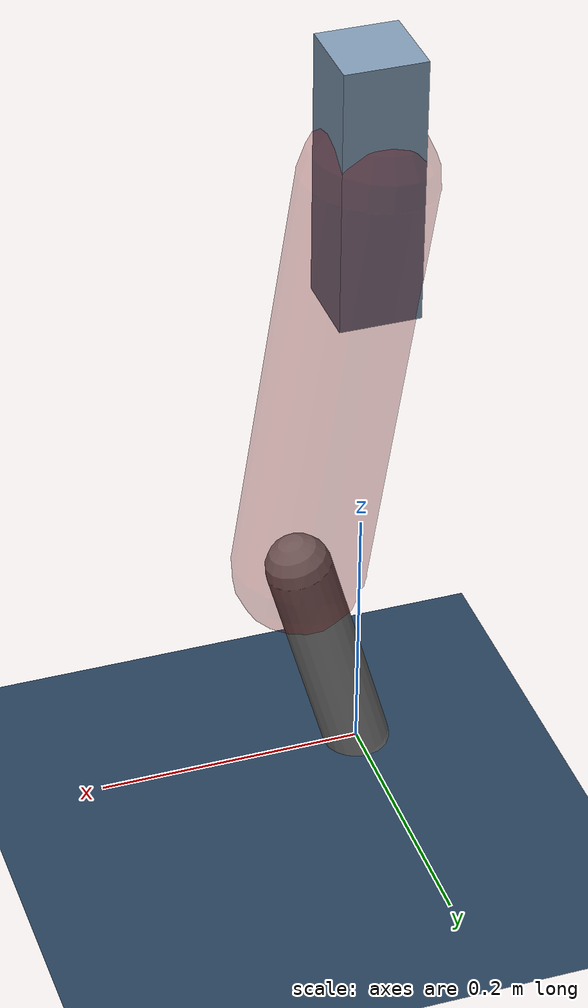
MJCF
<mujoco model="Hopper2D">
	<compiler inertiafromgeom="true" angle="radian" />
	<option timestep="0.001" integrator="implicit" cone="elliptic" solver="Newton" tolerance="1e-10" />

	<default>
		<geom contype="1" conaffinity="1" condim="3" friction="2 0.005 0.0001" solref="0.005 1" />
		<joint limited="true" damping="0.1" />
	</default>

	<asset>
		<texture name="skybox" type="skybox" builtin="gradient" rgb1=".4 .6 .8" rgb2="0 0 0" width="800" height="800" />
		<texture name="grid" type="2d" builtin="checker" rgb1=".1 .2 .3" rgb2=".2 .3 .4" width="300" height="300" mark="edge" markrgb=".2 .3 .4" />
		<material name="ground" texture="grid" texrepeat="1 1" texuniform="true" reflectance="0.1" />
		<material name="leg" rgba="0.5 0.6 0.7 1" />
	</asset>

	<worldbody>

		<geom name="floor" type="plane" size="5 5 0.25" material="ground" />

		<light directional="false" diffuse="0.8 0.8 0.8" specular="0.3 0.3 0.3" pos="0 0 2" dir="0 0 -1" />
		<light mode="targetbodycom" target="base" directional="false" diffuse="0.8 0.8 0.8" specular="0.3 0.3 0.3" pos="0 0 2" dir="0 0 -1" />

		<camera name="fixed" pos="0 -2 1" xyaxes="1 0 0 0 0 1" />
		<camera name="tracking" mode="trackcom" pos="0 -3 1" />

		<body name="root" pos="0 0 0.48945464851387194">
			<joint name="slide_x" type="slide" axis="1 0 0" range="-100 100" />
			<joint name="slide_z" type="slide" axis="0 0 1" range="0 10" />

			<body name="base" pos="0 0 0">
				<geom name="torso" type="box" size="0.03 0.03 0.1" mass="2.4400000000000004" material="leg" />

				<body name="link1" pos="0 0 0" euler="0 1.422663225500176 0">
					<joint type="hinge" axis="0 -1 0" pos="0 0 0" name="hinge1" limited="true" range="-3.14 3.14" stiffness="0" damping="0.1" />
					<geom name="thigh" type="capsule" fromto="0 0 0 0.3219034397889521 0 0" size="0.05" rgba="0.5 0 0 0.3" mass="1.0484392874301707" />

					<body name="link2" pos="0.3219034397889521 0 0" euler="0 0.419020684716929 0">
						<joint type="hinge" axis="0 -1 0" pos="0 0 0" name="hinge2" limited="true" range="-3.14 3.14" stiffness="0" damping="0.1" />
						<geom name="shank" type="capsule" fromto="0 0 0 0.17755120872491986 0 0" size="0.025" mass="0.38179608785242786" />

					</body>
				</body>
			</body>
		</body>
	</worldbody>

	<actuator>
		<motor name="torque1" joint="hinge1" ctrlrange="-83.09164798749637 83.09164798749637" ctrllimited="true" gear="1" />
		<motor name="torque2" joint="hinge2" ctrlrange="-22.038111133429997 22.038111133429997" ctrllimited="true" gear="1" />
	</actuator>
</mujoco>
